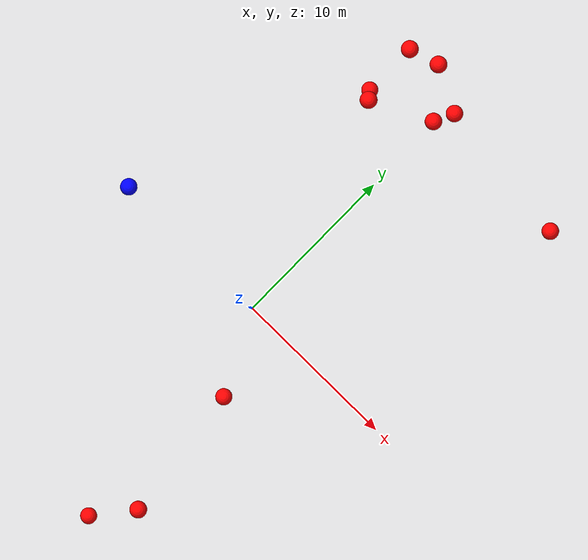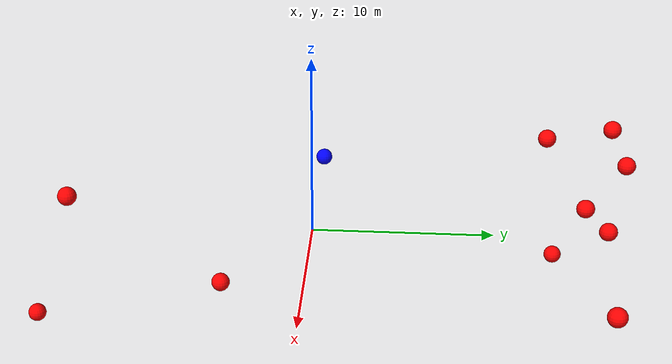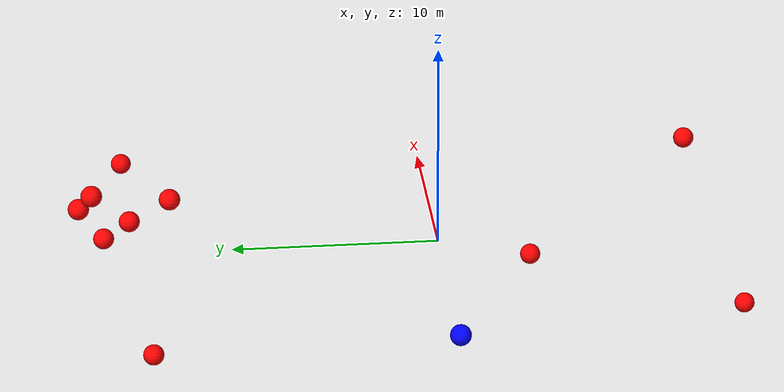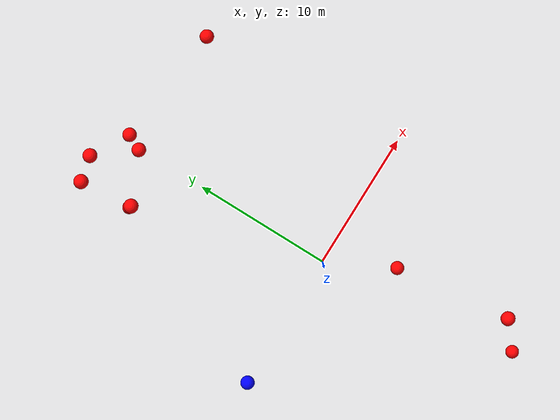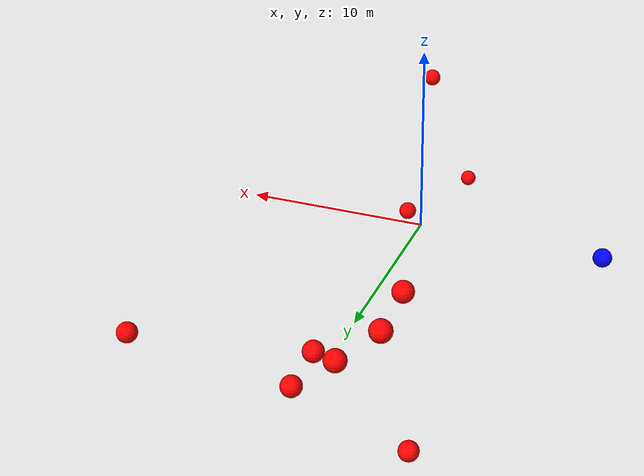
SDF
<?xml version="1.0" ?>
<sdf version="1.8">
    <world name="3d_world">
        <physics name="1ms" type="ode">
            <max_step_size>0.001</max_step_size>
            <real_time_factor>1.0</real_time_factor>
            <real_time_update_rate>1000.0</real_time_update_rate>
        </physics>
        <gravity>0 0 0</gravity>

        <plugin
            filename="gz-sim-physics-system"
            name="gz::sim::v8::systems::Physics">
        </plugin>
        <plugin
            filename="libignition-gazebo-user-commands-system.so"
            name="ignition::gazebo::systems::UserCommands">
        </plugin>
        <plugin
            filename="gz-sim-scene-broadcaster-system"
            name="gz::sim::systems::SceneBroadcaster">
        </plugin>
        <plugin
            filename="gz-sim-sensors-system"
            name="gz::sim::systems::Sensors">
            <render_engine>ogre2</render_engine>
        </plugin>

        <light type="directional" name="sun">
            <cast_shadows>true</cast_shadows>
            <pose>0 0 10 0 0 0</pose>
            <diffuse>0.8 0.8 0.8 1</diffuse>
            <specular>0.2 0.2 0.2 1</specular>
            <attenuation>
                <range>1000</range>
                <constant>0.9</constant>
                <linear>0.01</linear>
                <quadratic>0.001</quadratic>
            </attenuation>
            <direction>-0.5 0.1 -0.9</direction>
        </light>

        <!-- AGENTE -->
        <model name='agente' canonical_link='chassis'>
            <pose relative_to='world'>-10.0 0 0.0 0 0 0</pose>
            <link name='chassis'>
                <pose relative_to='__model__'>0.0 0 0.0 0 0 0</pose>
                <inertial>
                    <mass>1.14395</mass>
                    <inertia>
                        <ixx>0.095329</ixx>
                        <ixy>0</ixy>
                        <ixz>0</ixz>
                        <iyy>0.381317</iyy>
                        <iyz>0</iyz>
                        <izz>0.476646</izz>
                    </inertia>
                </inertial>
                <visual name='visual'>
                    <geometry>
                        <sphere>
                            <radius>0.5</radius>
                        </sphere>
                    </geometry>
                    <material>
                        <ambient>0.0 0.0 1.0 1</ambient>
                        <diffuse>0.0 0.0 1.0 1</diffuse>
                        <specular>0.0 0.0 1.0 1</specular>
                    </material>
                </visual>
                <collision name='collision'>
                    <geometry>
                        <sphere>
                            <radius>0.5</radius>
                        </sphere>
                    </geometry>
                </collision>
                <enable_gravity>false</enable_gravity>
            </link>

            <link name='lidar_link'>
                <pose relative_to='chassis'>0.0 0 0.1 0 0 0</pose>
                <inertial>
                    <mass>0.1</mass>
                    <inertia>
                        <ixx>0.000166667</ixx>
                        <iyy>0.000166667</iyy>
                        <izz>0.000166667</izz>
                    </inertia>
                </inertial>
                <collision name='collision'>
                    <geometry>
                        <cylinder>
                            <radius>0.05</radius>
                            <length>0.1</length>
                        </cylinder>
                    </geometry>
                </collision>
                <visual name='visual'>
                    <geometry>
                        <cylinder>
                            <radius>0.05</radius>
                            <length>0.1</length>
                        </cylinder>
                    </geometry>
                    <material>
                        <ambient>0.0 1.0 0.0 1</ambient>
                        <diffuse>0.0 1.0 0.0 1</diffuse>
                        <specular>0.0 1.0 0.0 1</specular>
                    </material>
                </visual>
                <sensor name="lidar" type="gpu_lidar">
                    <topic>scan</topic>
                    <update_rate>10</update_rate>
                    <lidar>
                        <scan>
                            <horizontal>
                                <samples>5000</samples>
                                <resolution>1</resolution>
                                <min_angle>-3.14159</min_angle>
                                <max_angle>3.14159</max_angle>
                            </horizontal>
                        </scan>
                        <range>
                            <min>0.1</min>
                            <max>10.0</max>
                            <resolution>0.01</resolution>
                        </range>
                    </lidar>
                    <visualize>true</visualize>
                    <always_on>true</always_on>
                    <update_rate>10</update_rate>
                    <pose_frame>lidar</pose_frame>
                </sensor>
                <enable_gravity>false</enable_gravity>
            </link>

            <joint name="lidar_joint" type="fixed">
                <parent>chassis</parent>
                <child>lidar_link</child>
            </joint>

            <plugin
                filename="ignition-gazebo-joint-state-publisher-system"
                name="ignition::gazebo::systems::JointStatePublisher">
            </plugin>
            <plugin
                filename="ignition-gazebo-odometry-publisher-system"
                name="ignition::gazebo::systems::OdometryPublisher">
                <dimensions>3</dimensions>
            </plugin>
            <plugin
                filename="ignition-gazebo-velocity-control-system"
                name="ignition::gazebo::systems::VelocityControl">
                <initial_linear>0.0 0 0</initial_linear>
                <initial_angular>0 0 0.0</initial_angular>
            </plugin>
            <plugin
                filename="libignition-gazebo-pose-publisher-system.so"
                name="ignition::gazebo::systems::PosePublisher">
                <topic>/agente/pose</topic>
                <frame_id>agente</frame_id>
                <update_rate>30</update_rate>
            </plugin>
        </model>

        <!-- OBSTACLE 1 -->
        <model name='obstacle_1' canonical_link='obstacle'>
            <static>false</static>
            <pose relative_to='world'>1.61 -15.66 -4.98 0 0 0</pose>
            <link name='obstacle'>
                <pose relative_to='__model__'>0.0 0 0.0 0 0 0</pose>
                <visual name='visual'>
                    <geometry>
                        <sphere>
                            <radius>0.50</radius>
                        </sphere>
                    </geometry>
                    <material>
                        <ambient>1.0 0.0 0.0 1</ambient>
                        <diffuse>1.0 0.0 0.0 1</diffuse>
                        <specular>1.0 0.0 0.0 1</specular>
                    </material>
                </visual>
                <collision name='collision'>
                    <geometry>
                        <sphere>
                            <radius>0.50</radius>
                        </sphere>
                    </geometry>
                </collision>
                <enable_gravity>false</enable_gravity>
            </link>

            <plugin
                filename="ignition-gazebo-velocity-control-system"
                name="ignition::gazebo::systems::VelocityControl">
                <initial_linear>-0.01 1.91 0.61</initial_linear>
                <initial_angular>0 0 0</initial_angular>
            </plugin>

            <plugin
                filename="ignition-gazebo-odometry-publisher-system"
                name="ignition::gazebo::systems::OdometryPublisher">
                <dimensions>3</dimensions>
            </plugin>
        </model>

        <!-- OBSTACLE 2 -->
        <model name='obstacle_2' canonical_link='obstacle'>
            <static>false</static>
            <pose relative_to='world'>-4.15 13.99 -3.34 0 0 0</pose>
            <link name='obstacle'>
                <pose relative_to='__model__'>0.0 0 0.0 0 0 0</pose>
                <visual name='visual'>
                    <geometry>
                        <sphere>
                            <radius>0.50</radius>
                        </sphere>
                    </geometry>
                    <material>
                        <ambient>1.0 0.0 0.0 1</ambient>
                        <diffuse>1.0 0.0 0.0 1</diffuse>
                        <specular>1.0 0.0 0.0 1</specular>
                    </material>
                </visual>
                <collision name='collision'>
                    <geometry>
                        <sphere>
                            <radius>0.50</radius>
                        </sphere>
                    </geometry>
                </collision>
                <enable_gravity>false</enable_gravity>
            </link>

            <plugin
                filename="ignition-gazebo-velocity-control-system"
                name="ignition::gazebo::systems::VelocityControl">
                <initial_linear>1.16 -1.58 0.38</initial_linear>
                <initial_angular>0 0 0</initial_angular>
            </plugin>

            <plugin
                filename="ignition-gazebo-odometry-publisher-system"
                name="ignition::gazebo::systems::OdometryPublisher">
                <dimensions>3</dimensions>
            </plugin>
        </model>

        <!-- OBSTACLE 3 -->
        <model name='obstacle_3' canonical_link='obstacle'>
            <static>false</static>
            <pose relative_to='world'>-2.08 17.24 3.47 0 0 0</pose>
            <link name='obstacle'>
                <pose relative_to='__model__'>0.0 0 0.0 0 0 0</pose>
                <visual name='visual'>
                    <geometry>
                        <sphere>
                            <radius>0.50</radius>
                        </sphere>
                    </geometry>
                    <material>
                        <ambient>1.0 0.0 0.0 1</ambient>
                        <diffuse>1.0 0.0 0.0 1</diffuse>
                        <specular>1.0 0.0 0.0 1</specular>
                    </material>
                </visual>
                <collision name='collision'>
                    <geometry>
                        <sphere>
                            <radius>0.50</radius>
                        </sphere>
                    </geometry>
                </collision>
                <enable_gravity>false</enable_gravity>
            </link>

            <plugin
                filename="ignition-gazebo-velocity-control-system"
                name="ignition::gazebo::systems::VelocityControl">
                <initial_linear>0.52 -1.89 -0.38</initial_linear>
                <initial_angular>0 0 0</initial_angular>
            </plugin>

            <plugin
                filename="ignition-gazebo-odometry-publisher-system"
                name="ignition::gazebo::systems::OdometryPublisher">
                <dimensions>3</dimensions>
            </plugin>
        </model>

        <!-- OBSTACLE 4 -->
        <model name='obstacle_4' canonical_link='obstacle'>
            <static>false</static>
            <pose relative_to='world'>-0.06 14.88 1.77 0 0 0</pose>
            <link name='obstacle'>
                <pose relative_to='__model__'>0.0 0 0.0 0 0 0</pose>
                <visual name='visual'>
                    <geometry>
                        <sphere>
                            <radius>0.50</radius>
                        </sphere>
                    </geometry>
                    <material>
                        <ambient>1.0 0.0 0.0 1</ambient>
                        <diffuse>1.0 0.0 0.0 1</diffuse>
                        <specular>1.0 0.0 0.0 1</specular>
                    </material>
                </visual>
                <collision name='collision'>
                    <geometry>
                        <sphere>
                            <radius>0.50</radius>
                        </sphere>
                    </geometry>
                </collision>
                <enable_gravity>false</enable_gravity>
            </link>

            <plugin
                filename="ignition-gazebo-velocity-control-system"
                name="ignition::gazebo::systems::VelocityControl">
                <initial_linear>0.50 -1.92 -0.23</initial_linear>
                <initial_angular>0 0 0</initial_angular>
            </plugin>

            <plugin
                filename="ignition-gazebo-odometry-publisher-system"
                name="ignition::gazebo::systems::OdometryPublisher">
                <dimensions>3</dimensions>
            </plugin>
        </model>

        <!-- OBSTACLE 5 -->
        <model name='obstacle_5' canonical_link='obstacle'>
            <static>false</static>
            <pose relative_to='world'>-3.78 16.59 4.90 0 0 0</pose>
            <link name='obstacle'>
                <pose relative_to='__model__'>0.0 0 0.0 0 0 0</pose>
                <visual name='visual'>
                    <geometry>
                        <sphere>
                            <radius>0.50</radius>
                        </sphere>
                    </geometry>
                    <material>
                        <ambient>1.0 0.0 0.0 1</ambient>
                        <diffuse>1.0 0.0 0.0 1</diffuse>
                        <specular>1.0 0.0 0.0 1</specular>
                    </material>
                </visual>
                <collision name='collision'>
                    <geometry>
                        <sphere>
                            <radius>0.50</radius>
                        </sphere>
                    </geometry>
                </collision>
                <enable_gravity>false</enable_gravity>
            </link>

            <plugin
                filename="ignition-gazebo-velocity-control-system"
                name="ignition::gazebo::systems::VelocityControl">
                <initial_linear>1.02 -1.65 -0.49</initial_linear>
                <initial_angular>0 0 0</initial_angular>
            </plugin>

            <plugin
                filename="ignition-gazebo-odometry-publisher-system"
                name="ignition::gazebo::systems::OdometryPublisher">
                <dimensions>3</dimensions>
            </plugin>
        </model>

        <!-- OBSTACLE 6 -->
        <model name='obstacle_6' canonical_link='obstacle'>
            <static>false</static>
            <pose relative_to='world'>-3.45 12.97 4.42 0 0 0</pose>
            <link name='obstacle'>
                <pose relative_to='__model__'>0.0 0 0.0 0 0 0</pose>
                <visual name='visual'>
                    <geometry>
                        <sphere>
                            <radius>0.50</radius>
                        </sphere>
                    </geometry>
                    <material>
                        <ambient>1.0 0.0 0.0 1</ambient>
                        <diffuse>1.0 0.0 0.0 1</diffuse>
                        <specular>1.0 0.0 0.0 1</specular>
                    </material>
                </visual>
                <collision name='collision'>
                    <geometry>
                        <sphere>
                            <radius>0.50</radius>
                        </sphere>
                    </geometry>
                </collision>
                <enable_gravity>false</enable_gravity>
            </link>

            <plugin
                filename="ignition-gazebo-velocity-control-system"
                name="ignition::gazebo::systems::VelocityControl">
                <initial_linear>0.42 -1.85 -0.63</initial_linear>
                <initial_angular>0 0 0</initial_angular>
            </plugin>

            <plugin
                filename="ignition-gazebo-odometry-publisher-system"
                name="ignition::gazebo::systems::OdometryPublisher">
                <dimensions>3</dimensions>
            </plugin>
        </model>

        <!-- OBSTACLE 7 -->
        <model name='obstacle_7' canonical_link='obstacle'>
            <static>false</static>
            <pose relative_to='world'>3.45 -12.58 3.40 0 0 0</pose>
            <link name='obstacle'>
                <pose relative_to='__model__'>0.0 0 0.0 0 0 0</pose>
                <visual name='visual'>
                    <geometry>
                        <sphere>
                            <radius>0.50</radius>
                        </sphere>
                    </geometry>
                    <material>
                        <ambient>1.0 0.0 0.0 1</ambient>
                        <diffuse>1.0 0.0 0.0 1</diffuse>
                        <specular>1.0 0.0 0.0 1</specular>
                    </material>
                </visual>
                <collision name='collision'>
                    <geometry>
                        <sphere>
                            <radius>0.50</radius>
                        </sphere>
                    </geometry>
                </collision>
                <enable_gravity>false</enable_gravity>
            </link>

            <plugin
                filename="ignition-gazebo-velocity-control-system"
                name="ignition::gazebo::systems::VelocityControl">
                <initial_linear>0.28 1.91 -0.52</initial_linear>
                <initial_angular>0 0 0</initial_angular>
            </plugin>

            <plugin
                filename="ignition-gazebo-odometry-publisher-system"
                name="ignition::gazebo::systems::OdometryPublisher">
                <dimensions>3</dimensions>
            </plugin>
        </model>

        <!-- OBSTACLE 8 -->
        <model name='obstacle_8' canonical_link='obstacle'>
            <static>false</static>
            <pose relative_to='world'>9.13 15.17 0.68 0 0 0</pose>
            <link name='obstacle'>
                <pose relative_to='__model__'>0.0 0 0.0 0 0 0</pose>
                <visual name='visual'>
                    <geometry>
                        <sphere>
                            <radius>0.50</radius>
                        </sphere>
                    </geometry>
                    <material>
                        <ambient>1.0 0.0 0.0 1</ambient>
                        <diffuse>1.0 0.0 0.0 1</diffuse>
                        <specular>1.0 0.0 0.0 1</specular>
                    </material>
                </visual>
                <collision name='collision'>
                    <geometry>
                        <sphere>
                            <radius>0.50</radius>
                        </sphere>
                    </geometry>
                </collision>
                <enable_gravity>false</enable_gravity>
            </link>

            <plugin
                filename="ignition-gazebo-velocity-control-system"
                name="ignition::gazebo::systems::VelocityControl">
                <initial_linear>-0.76 -1.85 -0.08</initial_linear>
                <initial_angular>0 0 0</initial_angular>
            </plugin>

            <plugin
                filename="ignition-gazebo-odometry-publisher-system"
                name="ignition::gazebo::systems::OdometryPublisher">
                <dimensions>3</dimensions>
            </plugin>
        </model>

        <!-- OBSTACLE 9 -->
        <model name='obstacle_9' canonical_link='obstacle'>
            <static>false</static>
            <pose relative_to='world'>2.40 -4.88 -2.11 0 0 0</pose>
            <link name='obstacle'>
                <pose relative_to='__model__'>0.0 0 0.0 0 0 0</pose>
                <visual name='visual'>
                    <geometry>
                        <sphere>
                            <radius>0.50</radius>
                        </sphere>
                    </geometry>
                    <material>
                        <ambient>1.0 0.0 0.0 1</ambient>
                        <diffuse>1.0 0.0 0.0 1</diffuse>
                        <specular>1.0 0.0 0.0 1</specular>
                    </material>
                </visual>
                <collision name='collision'>
                    <geometry>
                        <sphere>
                            <radius>0.50</radius>
                        </sphere>
                    </geometry>
                </collision>
                <enable_gravity>false</enable_gravity>
            </link>

            <plugin
                filename="ignition-gazebo-velocity-control-system"
                name="ignition::gazebo::systems::VelocityControl">
                <initial_linear>0.57 0.76 0.33</initial_linear>
                <initial_angular>0 0 0</initial_angular>
            </plugin>

            <plugin
                filename="ignition-gazebo-odometry-publisher-system"
                name="ignition::gazebo::systems::OdometryPublisher">
                <dimensions>3</dimensions>
            </plugin>
        </model>

        <!-- OBSTACLE 10 -->
        <model name='obstacle_10' canonical_link='obstacle'>
            <static>false</static>
            <pose relative_to='world'>0.46 16.14 0.67 0 0 0</pose>
            <link name='obstacle'>
                <pose relative_to='__model__'>0.0 0 0.0 0 0 0</pose>
                <visual name='visual'>
                    <geometry>
                        <sphere>
                            <radius>0.50</radius>
                        </sphere>
                    </geometry>
                    <material>
                        <ambient>1.0 0.0 0.0 1</ambient>
                        <diffuse>1.0 0.0 0.0 1</diffuse>
                        <specular>1.0 0.0 0.0 1</specular>
                    </material>
                </visual>
                <collision name='collision'>
                    <geometry>
                        <sphere>
                            <radius>0.50</radius>
                        </sphere>
                    </geometry>
                </collision>
                <enable_gravity>false</enable_gravity>
            </link>

            <plugin
                filename="ignition-gazebo-velocity-control-system"
                name="ignition::gazebo::systems::VelocityControl">
                <initial_linear>-0.12 -1.99 -0.08</initial_linear>
                <initial_angular>0 0 0</initial_angular>
            </plugin>

            <plugin
                filename="ignition-gazebo-odometry-publisher-system"
                name="ignition::gazebo::systems::OdometryPublisher">
                <dimensions>3</dimensions>
            </plugin>
        </model>

    </world>
</sdf>
